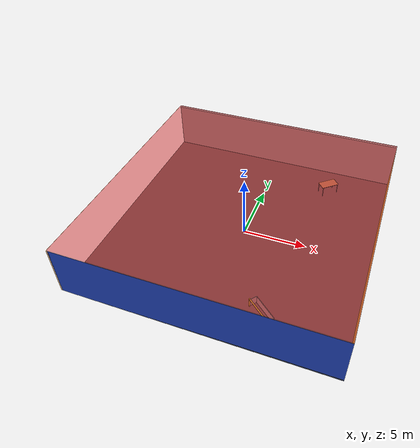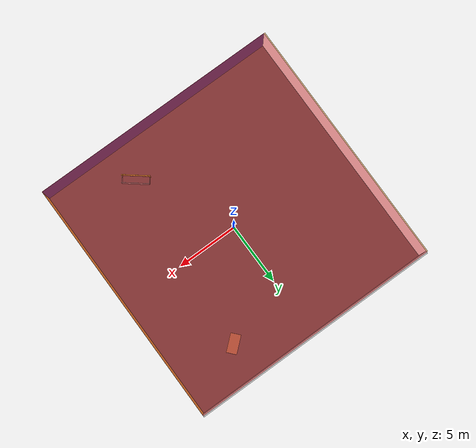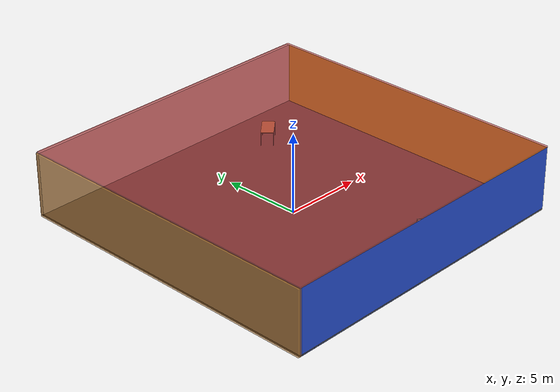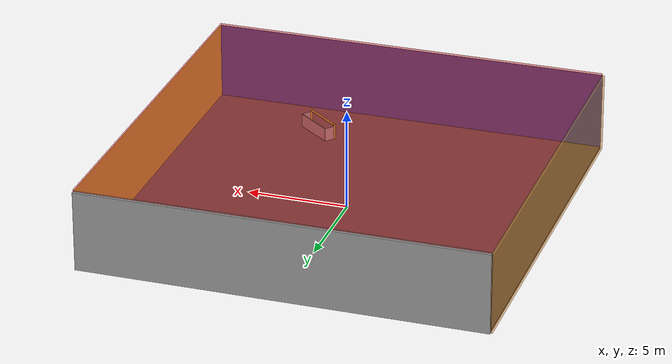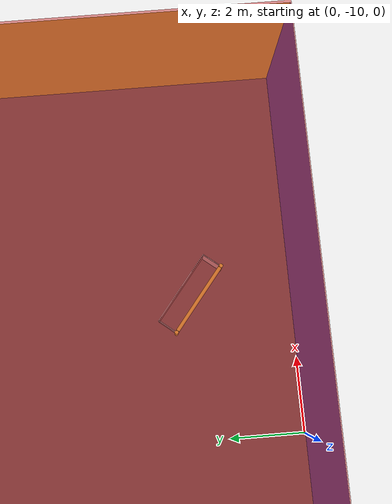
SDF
<sdf version="1.4">
 <world name="default">
  <physics type="ode">
   <max_step_size>0.001</max_step_size>
   <real_time_factor>1</real_time_factor>
   <real_time_update_rate>1000</real_time_update_rate>
   <gravity>0 0 -9.8</gravity>
  </physics>
  <scene><ambient>0.4 0.4 0.4 1</ambient><background>0.7 0.7 0.7 1</background><shadows>1</shadows></scene>
  <model name="Surrounding">
   <static>1</static>
   <link name="Ceiling">
    <collision name="Ceiling_Collision"><geometry><box><size>20 20 0.1</size></box></geometry></collision>
    <visual name="Ceiling_Visual">
     <geometry><box><size>20 20 0.1</size></box></geometry>
     <material>
      <script><uri>file://media/materials/scripts/gazebo.material</uri><name>Gazebo/RedTransparent</name></script>
     </material>
    </visual>
    <pose>0 0 4.05 0 0 0</pose>
   </link>
   <link name="Wall_South">
    <collision name="Wall_South_Collision">
     <geometry><box><size>20 0 4</size></box></geometry>
     <pose>0 0 2 0 -0 0</pose>
    </collision>
    <visual name="Wall_South_Visual">
     <pose>0 0 2 0 -0 0</pose>
     <geometry><box><size>20 0 4</size></box></geometry>
     <material>
      <script><uri>file://media/materials/scripts/gazebo.material</uri><name>Gazebo/BlueGlow</name></script>
     </material>
    </visual>
    <velocity_decay><linear>0</linear><angular>0</angular></velocity_decay>
    <pose>0 -10 0 0 -0 0</pose>
   </link>
   <link name="Wall_East">
    <collision name="Wall_21_Collision">
     <geometry><box><size>20 0 4</size></box></geometry>
     <pose>0 0 2 0 -0 0</pose>
    </collision>
    <visual name="Wall_21_Visual">
     <pose>0 0 2 0 -0 0</pose>
     <geometry><box><size>20 0 4</size></box></geometry>
     <material>
      <script><uri>file://media/materials/scripts/gazebo.material</uri><name>Gazebo/ZincYellow</name></script>
     </material>
    </visual>
    <velocity_decay><linear>0</linear><angular>0</angular></velocity_decay>
    <pose>10 0 0 0 -0 1.5708</pose>
   </link>
   <link name="Wall_North">
    <collision name="Wall_22_Collision">
     <geometry><box><size>20 0.2 4</size></box></geometry>
     <pose>0 0 2 0 -0 0</pose>
    </collision>
    <visual name="Wall_22_Visual">
     <pose>0 0 2 0 -0 0</pose>
     <geometry><box><size>20 0.2 4</size></box></geometry>
     <material>
      <script><uri>file://media/materials/scripts/gazebo.material</uri><name>Gazebo/JointAnchor</name></script>
     </material>
    </visual>
    <velocity_decay><linear>0</linear><angular>0</angular></velocity_decay>
    <pose>0 10 0 0 -0 0</pose>
   </link>
   <link name="Wall_West">
    <collision name="Wall_23_Collision">
     <geometry><box><size>20 0.2 4</size></box></geometry>
     <pose>0 0 2 0 -0 0</pose>
    </collision>
    <visual name="Wall_23_Visual">
     <pose>0 0 2 0 -0 0</pose>
     <geometry><box><size>20 0.2 4</size></box></geometry>
     <material>
      <script>
       <uri>file://media/materials/scripts/gazebo.material</uri>
       <name>Gazebo/OrangeTransparent</name>
      </script>
     </material>
    </visual>
    <velocity_decay><linear>0</linear><angular>0</angular></velocity_decay>
    <pose>-10 0 0 0 0 -1.5708</pose>
   </link>
   <link name="Ground_link">
    <collision name="collision">
     <pose>0 0 .05 0 -0 0</pose>
     <geometry><box><size>20 20 0.1</size></box></geometry>
    </collision>
    <visual name="visual">
     <pose>0 0 .05 0 -0 0</pose>
     <geometry><box><size>20 20 0.1</size></box></geometry>
     <material>
      <script><uri>file://media/materials/scripts/gazebo.material</uri><name>Gazebo/DarkGrey</name></script>
     </material>
    </visual>
   </link>
   <static>1</static>
  </model>
  <spherical_coordinates>
   <surface_model>EARTH_WGS84</surface_model>
   <latitude_deg>0</latitude_deg>
   <longitude_deg>0</longitude_deg>
   <elevation>0</elevation>
   <heading_deg>0</heading_deg>
  </spherical_coordinates>
  <light name="lightball_0" type="diffuse">
   <diffuse>0.8 0.8 0.8 1</diffuse>
   <specular>0.2 0.2 0.2 1</specular>
   <attenuation>
    <range>100</range>
    <constant>0.7</constant>
    <linear>0.01</linear>
    <quadratic>0.001</quadratic>
   </attenuation>
   <direction>-0.5 0.1 -0.9</direction>
   <pose>5.09227932392 -2.30152589497 3.56787121392 0 0 0</pose>
  </light>
  <light name="lightball_1" type="diffuse">
   <diffuse>0.8 0.8 0.8 1</diffuse>
   <specular>0.2 0.2 0.2 1</specular>
   <attenuation>
    <range>100</range>
    <constant>0.7</constant>
    <linear>0.01</linear>
    <quadratic>0.001</quadratic>
   </attenuation>
   <direction>-0.5 0.1 -0.9</direction>
   <pose>8.54655006518 -6.5626716284 3.76294629659 0 0 0</pose>
  </light>
  <light name="lightball_2" type="diffuse">
   <diffuse>0.8 0.8 0.8 1</diffuse>
   <specular>0.2 0.2 0.2 1</specular>
   <attenuation>
    <range>100</range>
    <constant>0.7</constant>
    <linear>0.01</linear>
    <quadratic>0.001</quadratic>
   </attenuation>
   <direction>-0.5 0.1 -0.9</direction>
   <pose>-7.48551721983 5.68790971676 2.19916305952 0 0 0</pose>
  </light>
  <light name="lightball_3" type="diffuse">
   <diffuse>0.8 0.8 0.8 1</diffuse>
   <specular>0.2 0.2 0.2 1</specular>
   <attenuation>
    <range>100</range>
    <constant>0.7</constant>
    <linear>0.01</linear>
    <quadratic>0.001</quadratic>
   </attenuation>
   <direction>-0.5 0.1 -0.9</direction>
   <pose>-2.90618436632 3.63512729306 1.78807690718 0 0 0</pose>
  </light>
  <light name="lightball_4" type="diffuse">
   <diffuse>0.8 0.8 0.8 1</diffuse>
   <specular>0.2 0.2 0.2 1</specular>
   <attenuation>
    <range>100</range>
    <constant>0.7</constant>
    <linear>0.01</linear>
    <quadratic>0.001</quadratic>
   </attenuation>
   <direction>-0.5 0.1 -0.9</direction>
   <pose>-0.2261389656 -8.06091881686 2.25196741059 0 0 0</pose>
  </light>
  <light name="lightball_5" type="diffuse">
   <diffuse>0.8 0.8 0.8 1</diffuse>
   <specular>0.2 0.2 0.2 1</specular>
   <attenuation>
    <range>100</range>
    <constant>0.7</constant>
    <linear>0.01</linear>
    <quadratic>0.001</quadratic>
   </attenuation>
   <direction>-0.5 0.1 -0.9</direction>
   <pose>5.67575714731 8.08633977162 0.613618809032 0 0 0</pose>
  </light>
  <light name="lightball_6" type="diffuse">
   <diffuse>0.8 0.8 0.8 1</diffuse>
   <specular>0.2 0.2 0.2 1</specular>
   <attenuation>
    <range>100</range>
    <constant>0.7</constant>
    <linear>0.01</linear>
    <quadratic>0.001</quadratic>
   </attenuation>
   <direction>-0.5 0.1 -0.9</direction>
   <pose>5.91901616676 7.2675103287 0.823153366345 0 0 0</pose>
  </light>
  <include>
   <uri>model://robocup_3Dsim_goal</uri>
   <pose>3.70289044679 -7.47248875889 0 0 0 0.899813824604</pose>
  </include>
  <include><uri>model://table</uri><pose>5.17070391559 7.05762717376 0 0 0 0.714881885443</pose></include>
 </world>
</sdf>

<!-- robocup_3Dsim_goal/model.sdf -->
<sdf version="1.5">
  <model name="robocup_3d_goal">
    <static>true</static>
    <link name="left_post">
      <pose>0 1.05 0.45 0 0 0</pose>
      <collision name="collision">
        <geometry>
          <cylinder>
            <radius>0.05</radius>
            <length>0.9</length>
          </cylinder>
        </geometry>
      </collision>
      <visual name="visual">
        <geometry>
          <cylinder>
            <radius>0.05</radius>
            <length>0.9</length>
          </cylinder>
        </geometry>
        <material>
          <script>
            <uri>file://media/materials/scripts/gazebo.material</uri>
            <name>Gazebo/ZincYellow</name>
          </script>
        </material>
      </visual>
    </link>
    <link name="left_support_horiz_lower">
      <pose>0.30 1.05 0.01 0 0 0</pose>
      <collision name="collision">
        <geometry>
          <box>
            <size>0.50 0.02 0.02</size>
          </box>
        </geometry>
      </collision>
      <visual name="visual">
        <geometry>
          <box>
            <size>0.50 0.02 0.02</size>
          </box>
        </geometry>
        <material>
          <script>
            <uri>file://media/materials/scripts/gazebo.material</uri>
            <name>Gazebo/White</name>
          </script>
        </material>
      </visual>
    </link>
    <link name="left_support_horiz_upper">
      <pose>0.30 1.05 0.79 0 0 0</pose>
      <collision name="collision">
        <geometry>
          <box>
            <size>0.50 0.02 0.02</size>
          </box>
        </geometry>
      </collision>
      <visual name="visual">
        <geometry>
          <box>
            <size>0.50 0.02 0.02</size>
          </box>
        </geometry>
        <material>
          <script>
            <uri>file://media/materials/scripts/gazebo.material</uri>
            <name>Gazebo/White</name>
          </script>
        </material>
      </visual>
    </link>
    <link name="left_support_vertical">
      <pose>0.56 1.05 0.4 0 1.5708 0</pose>
      <collision name="collision">
        <geometry>
          <box>
            <size>0.80 0.02 0.02</size>
          </box>
        </geometry>
      </collision>
      <visual name="visual">
        <geometry>
          <box>
            <size>0.80 0.02 0.02</size>
          </box>
        </geometry>
        <material>
          <script>
            <uri>file://media/materials/scripts/gazebo.material</uri>
            <name>Gazebo/White</name>
          </script>
        </material>
      </visual>
    </link>
    <link name="right_support_horiz_lower">
      <pose>0.30 -1.05 0.01 0 0 0</pose>
      <collision name="collision">
        <geometry>
          <box>
            <size>0.50 0.02 0.02</size>
          </box>
        </geometry>
      </collision>
      <visual name="visual">
        <geometry>
          <box>
            <size>0.50 0.02 0.02</size>
          </box>
        </geometry>
        <material>
          <script>
            <uri>file://media/materials/scripts/gazebo.material</uri>
            <name>Gazebo/White</name>
          </script>
        </material>
      </visual>
    </link>
    <link name="right_support_horiz_upper">
      <pose>0.30 -1.05 0.79 0 0 0</pose>
      <collision name="collision">
        <geometry>
          <box>
            <size>0.50 0.02 0.02</size>
          </box>
        </geometry>
      </collision>
      <visual name="visual">
        <geometry>
          <box>
            <size>0.50 0.02 0.02</size>
          </box>
        </geometry>
        <material>
          <script>
            <uri>file://media/materials/scripts/gazebo.material</uri>
            <name>Gazebo/White</name>
          </script>
        </material>
      </visual>
    </link>
    <link name="right_support_vertical">
      <pose>0.56 -1.05 0.4 0 1.5708 0</pose>
      <collision name="collision">
        <geometry>
          <box>
            <size>0.80 0.02 0.02</size>
          </box>
        </geometry>
      </collision>
      <visual name="visual">
        <geometry>
          <box>
            <size>0.80 0.02 0.02</size>
          </box>
        </geometry>
        <material>
          <script>
            <uri>file://media/materials/scripts/gazebo.material</uri>
            <name>Gazebo/White</name>
          </script>
        </material>
      </visual>
    </link>
    <link name="center_support_horiz_lower">
      <pose>0.56 0 0.01 0 1.5708 0</pose>
      <collision name="collision">
        <geometry>
          <box>
            <size>0.02 2.08 0.02</size>
          </box>
        </geometry>
      </collision>
      <visual name="visual">
        <geometry>
          <box>
            <size>0.02 2.08 0.02</size>
          </box>
        </geometry>
        <material>
          <script>
            <uri>file://media/materials/scripts/gazebo.material</uri>
            <name>Gazebo/White</name>
          </script>
        </material>
      </visual>
    </link>
    <link name="center_support_horiz_upper">
      <pose>0.56 0 0.79 0 1.5708 0</pose>
      <collision name="collision">
        <geometry>
          <box>
            <size>0.02 2.08 0.02</size>
          </box>
        </geometry>
      </collision>
      <visual name="visual">
        <geometry>
          <box>
            <size>0.02 2.08 0.02</size>
          </box>
        </geometry>
        <material>
          <script>
            <uri>file://media/materials/scripts/gazebo.material</uri>
            <name>Gazebo/White</name>
          </script>
        </material>
      </visual>
    </link>
    <link name="right_post">
      <pose>0 -1.05 0.45 0 0 0</pose>
      <collision name="collision">
        <geometry>
          <cylinder>
            <radius>0.05</radius>
            <length>0.9</length>
          </cylinder>
        </geometry>
      </collision>
      <visual name="visual">
        <geometry>
          <cylinder>
            <radius>0.05</radius>
            <length>0.9</length>
          </cylinder>
        </geometry>
        <material>
          <script>
            <uri>file://media/materials/scripts/gazebo.material</uri>
            <name>Gazebo/ZincYellow</name>
          </script>
        </material>
      </visual>
    </link>
    <link name="crossbar">
      <pose>0 0 0.85 1.57 1.57 0</pose>
      <collision name="collision">
        <geometry>
          <cylinder>
            <radius>0.05</radius>
            <length>2.0</length>
          </cylinder>
        </geometry>
      </collision>
      <visual name="visual">
        <geometry>
          <cylinder>
            <radius>0.05</radius>
            <length>2.0</length>
          </cylinder>
        </geometry>
        <material>
          <script>
            <uri>file://media/materials/scripts/gazebo.material</uri>
            <name>Gazebo/ZincYellow</name>
          </script>
        </material>
      </visual>
    </link>
    <link name="center_net">
      <pose>0.56 0 0.40 0 0 0</pose>
      <collision name="collision">
        <geometry>
          <box>
            <size>0.01 2.1 0.80</size>
          </box>
        </geometry>
      </collision>
      <visual name="visual">
        <geometry>
          <box>
            <size>0.01 2.1 0.80</size>
          </box>
        </geometry>
        <material>
          <script>
            <uri>model://../model_source/models/robocup09_spl_field/materials/scripts/</uri>
            <uri>model://../model_source/models/robocup09_spl_field/materials/textures/</uri>
            <name>RoboCup/Net</name>
          </script>
        </material>
      </visual>
    </link>
    <link name="left_net">
      <pose>0.30 1.05 0.40 0 0 0</pose>
      <collision name="collision">
        <geometry>
          <box>
            <size>0.50 0.01 0.76</size>
          </box>
        </geometry>
      </collision>
      <visual name="visual">
        <geometry>
          <box>
            <size>0.50 0.01 0.76</size>
          </box>
        </geometry>
        <material>
          <script>
            <uri>model://../model_source/models/robocup09_spl_field/materials/scripts/</uri>
            <uri>model://../model_source/models/robocup09_spl_field/materials/textures/</uri>
            <name>RoboCup/Net</name>
          </script>
        </material>
      </visual>
    </link>
    <link name="right_net">
      <pose>0.30 -1.05 0.40 0 0 0</pose>
      <collision name="collision">
        <geometry>
          <box>
            <size>0.50 0.01 0.76</size>
          </box>
        </geometry>
      </collision>
      <visual name="visual">
        <geometry>
          <box>
            <size>0.50 0.01 0.76</size>
          </box>
        </geometry>
        <material>
          <script>
            <uri>model://../model_source/models/robocup09_spl_field/materials/scripts/</uri>
            <uri>model://../model_source/models/robocup09_spl_field/materials/textures/</uri>
            <name>RoboCup/Net</name>
          </script>
        </material>
      </visual>
    </link>
  </model>
</sdf>

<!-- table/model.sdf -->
<sdf version="1.5">
  <model name="table">
    <static>true</static>
    <link name="link">
      <collision name="surface">
        <pose>0 0 1.0 0 0 0</pose>
        <geometry>
          <box>
            <size>1.5 0.8 0.03</size>
          </box>
        </geometry>
        <surface>
          <friction>
            <ode>
              <mu>0.6</mu>
              <mu2>0.6</mu2>
            </ode>
          </friction>
        </surface>
      </collision>
      <visual name="visual1">
        <pose>0 0 1.0 0 0 0</pose>
        <geometry>
          <box>
            <size>1.5 0.8 0.03</size>
          </box>
        </geometry>
        <material>
          <script>
            <uri>model://media/materials/scripts/gazebo.material</uri>
            <name>Gazebo/Wood</name>
          </script>
        </material>
      </visual>
      <collision name="front_left_leg">
        <pose>0.68 0.38 0.5 0 0 0</pose>
        <geometry>
          <cylinder>
            <radius>0.02</radius>
            <length>1.0</length>
          </cylinder>
        </geometry>
      </collision>
      <visual name="front_left_leg">
        <pose>0.68 0.38 0.5 0 0 0</pose>
        <geometry>
          <cylinder>
            <radius>0.02</radius>
            <length>1.0</length>
          </cylinder>
        </geometry>
        <material>
          <script>
            <uri>model://media/materials/scripts/gazebo.material</uri>
            <name>Gazebo/Grey</name>
          </script>
        </material>
      </visual>
      <collision name="front_right_leg">
        <pose>0.68 -0.38 0.5 0 0 0</pose>
        <geometry>
          <cylinder>
            <radius>0.02</radius>
            <length>1.0</length>
          </cylinder>
        </geometry>
      </collision>
      <visual name="front_right_leg">
        <pose>0.68 -0.38 0.5 0 0 0</pose>
        <geometry>
          <cylinder>
            <radius>0.02</radius>
            <length>1.0</length>
          </cylinder>
        </geometry>
        <material>
          <script>
            <uri>model://media/materials/scripts/gazebo.material</uri>
            <name>Gazebo/Grey</name>
          </script>
        </material>
      </visual>
      <collision name="back_right_leg">
        <pose>-0.68 -0.38 0.5 0 0 0</pose>
        <geometry>
          <cylinder>
            <radius>0.02</radius>
            <length>1.0</length>
          </cylinder>
        </geometry>
      </collision>
      <visual name="back_right_leg">
        <pose>-0.68 -0.38 0.5 0 0 0</pose>
        <geometry>
          <cylinder>
            <radius>0.02</radius>
            <length>1.0</length>
          </cylinder>
        </geometry>
        <material>
          <script>
            <uri>model://media/materials/scripts/gazebo.material</uri>
            <name>Gazebo/Grey</name>
          </script>
        </material>
      </visual>
      <collision name="back_left_leg">
        <pose>-0.68 0.38 0.5 0 0 0</pose>
        <geometry>
          <cylinder>
            <radius>0.02</radius>
            <length>1.0</length>
          </cylinder>
        </geometry>
      </collision>
      <visual name="back_left_leg">
        <pose>-0.68 0.38 0.5 0 0 0</pose>
        <geometry>
          <cylinder>
            <radius>0.02</radius>
            <length>1.0</length>
          </cylinder>
        </geometry>
        <material>
          <script>
            <uri>model://media/materials/scripts/gazebo.material</uri>
            <name>Gazebo/Grey</name>
          </script>
        </material>
      </visual>
    </link>
  </model>
</sdf>
